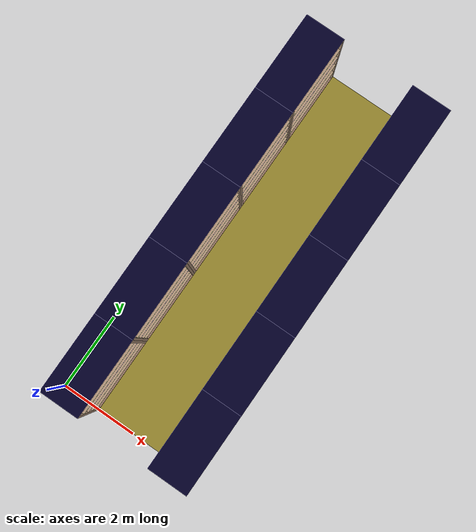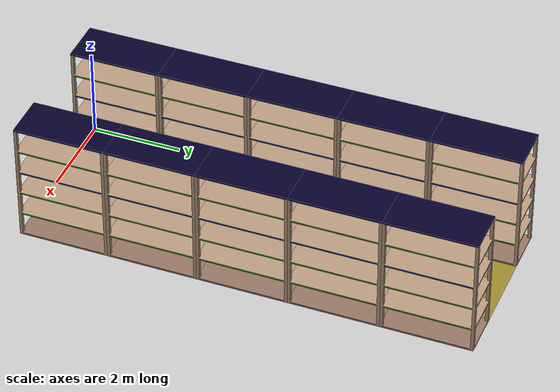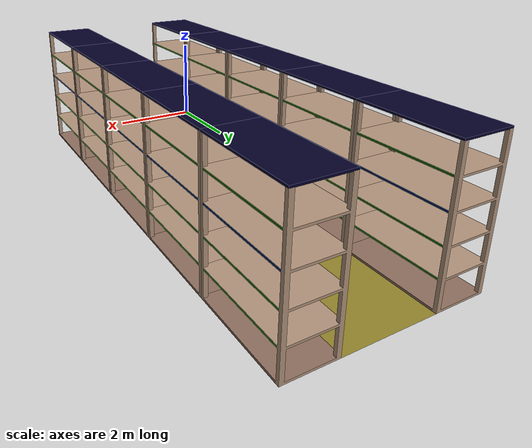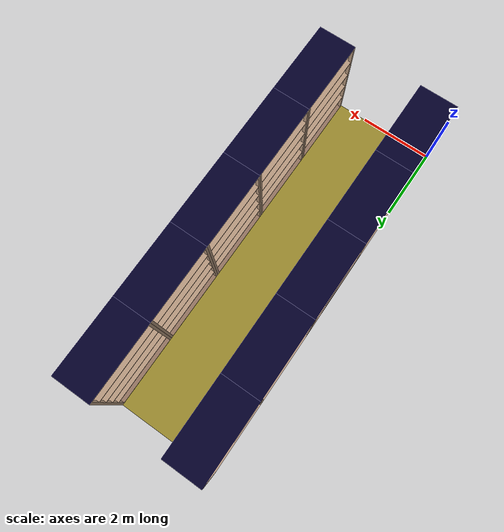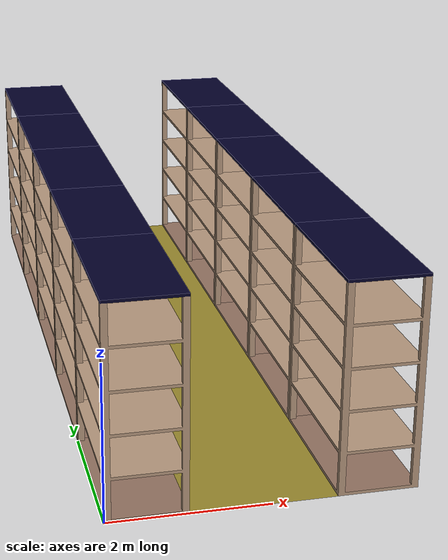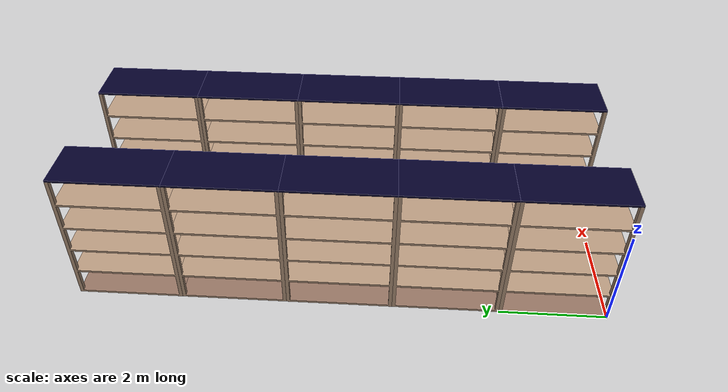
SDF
<?xml version="1.0"?>
<sdf version="1.6">
  <world name="biblioteca">
    <physics type="ode" name="split_unthrottled3">
      <real_time_update_rate>1000.0</real_time_update_rate>
      <max_step_size>0.001</max_step_size>
      <ode>
        <solver>
          <type>quick</type>
          <sor>1.4</sor>
          <thread_position_correction>1</thread_position_correction>
          <island_threads>4</island_threads>
        </solver>
      </ode>
    </physics>
    <scene>
      <ambient>1 1 1 1</ambient>
      <background>0.3 0.7 0.9 1</background>
      <shadows>0</shadows>
      <grid>1</grid>
    </scene>
    <model name="floor">
      <pose>0 0 0.0  0 0 0</pose>
      <static>true</static>
      <link name="main">
        <visual name="visual">
          <geometry>
            <mesh>
              <uri>model://use_case_resources/store/meshes/floor.dae</uri>
            </mesh>
          </geometry>
        </visual>
        <collision name="collision">
          <geometry>
            <mesh>
              <uri>model://use_case_resources/store/meshes/floor-collision.dae</uri>
            </mesh>
          </geometry>
        </collision>
      </link>
      <link name="shelf1">
        <pose>0.0 0.0 0.0 0 0 0</pose>
        <visual name="visual">
          <geometry>
            <mesh>
              <uri>model://use_case_resources/store/meshes/shelf.dae</uri>
            </mesh>
          </geometry>
        </visual>
        <collision name="collision">
          <geometry>
            <mesh>
              <uri>model://use_case_resources/store/meshes/shelf-collision.dae</uri>
            </mesh>
          </geometry>
        </collision>
      </link>
      <link name="shelf2">
        <pose>0.0 2.0 0.0 0 0 0</pose>
        <visual name="visual">
          <geometry>
            <mesh>
              <uri>model://use_case_resources/store/meshes/shelf.dae</uri>
            </mesh>
          </geometry>
        </visual>
        <collision name="collision">
          <geometry>
            <mesh>
              <uri>model://use_case_resources/store/meshes/shelf-collision.dae</uri>
            </mesh>
          </geometry>
        </collision>
      </link>
      <link name="shelf3">
        <pose>0.0 4.0 0.0 0 0 0</pose>
        <visual name="visual">
          <geometry>
            <mesh>
              <uri>model://use_case_resources/store/meshes/shelf.dae</uri>
            </mesh>
          </geometry>
        </visual>
        <collision name="collision">
          <geometry>
            <mesh>
              <uri>model://use_case_resources/store/meshes/shelf-collision.dae</uri>
            </mesh>
          </geometry>
        </collision>
      </link>
      <link name="shelf4">
        <pose>0.0 6.0 0.0 0 0 0</pose>
        <visual name="visual">
          <geometry>
            <mesh>
              <uri>model://use_case_resources/store/meshes/shelf.dae</uri>
            </mesh>
          </geometry>
        </visual>
        <collision name="collision">
          <geometry>
            <mesh>
              <uri>model://use_case_resources/store/meshes/shelf-collision.dae</uri>
            </mesh>
          </geometry>
        </collision>
      </link>
      <link name="shelf5">
        <pose>0.0 8.0 0.0 0 0 0</pose>
        <visual name="visual">
          <geometry>
            <mesh>
              <uri>model://use_case_resources/store/meshes/shelf.dae</uri>
            </mesh>
          </geometry>
        </visual>
        <collision name="collision">
          <geometry>
            <mesh>
              <uri>model://use_case_resources/store/meshes/shelf-collision.dae</uri>
            </mesh>
          </geometry>
        </collision>
      </link>
      <link name="right-shelf1">
        <pose>2.8 0.0 0.0 0 0 0</pose>
        <visual name="visual">
          <geometry>
            <mesh>
              <uri>model://use_case_resources/store/meshes/shelf.dae</uri>
            </mesh>
          </geometry>
        </visual>
        <collision name="collision">
          <geometry>
            <mesh>
              <uri>model://use_case_resources/store/meshes/shelf-collision.dae</uri>
            </mesh>
          </geometry>
        </collision>
      </link>
      <link name="right-shelf2">
        <pose>2.8 2.0 0.0 0 0 0</pose>
        <visual name="visual">
          <geometry>
            <mesh>
              <uri>model://use_case_resources/store/meshes/shelf.dae</uri>
            </mesh>
          </geometry>
        </visual>
        <collision name="collision">
          <geometry>
            <mesh>
              <uri>model://use_case_resources/store/meshes/shelf-collision.dae</uri>
            </mesh>
          </geometry>
        </collision>
      </link>
      <link name="right-shelf3">
        <pose>2.8 4.0 0.0 0 0 0</pose>
        <visual name="visual">
          <geometry>
            <mesh>
              <uri>model://use_case_resources/store/meshes/shelf.dae</uri>
            </mesh>
          </geometry>
        </visual>
        <collision name="collision">
          <geometry>
            <mesh>
              <uri>model://use_case_resources/store/meshes/shelf-collision.dae</uri>
            </mesh>
          </geometry>
        </collision>
      </link>
      <link name="right-shelf4">
        <pose>2.8 6.0 0.0 0 0 0</pose>
        <visual name="visual">
          <geometry>
            <mesh>
              <uri>model://use_case_resources/store/meshes/shelf.dae</uri>
            </mesh>
          </geometry>
        </visual>
        <collision name="collision">
          <geometry>
            <mesh>
              <uri>model://use_case_resources/store/meshes/shelf-collision.dae</uri>
            </mesh>
          </geometry>
        </collision>
      </link>
      <link name="right-shelf5">
        <pose>2.8 8.0 0.0 0 0 0</pose>
        <visual name="visual">
          <geometry>
            <mesh>
              <uri>model://use_case_resources/store/meshes/shelf.dae</uri>
            </mesh>
          </geometry>
        </visual>
        <collision name="collision">
          <geometry>
            <mesh>
              <uri>model://use_case_resources/store/meshes/shelf-collision.dae</uri>
            </mesh>
          </geometry>
        </collision>
      </link>
      <joint name="world_joint" type="fixed">
          <parent>world</parent>
          <child>main</child>
      </joint>
    </model>
    <light type="point" name="light1">
      <pose>1.9 3.3 3.0 0 0 0</pose>
      <diffuse>127 127 127 127</diffuse>
      <specular>0.3 0.3 0.3 1</specular>
      <attenuation>
        <linear>0.01</linear>
        <constant>0.5</constant>
        <quadratic>0</quadratic>
      </attenuation>
      <cast_shadows>true</cast_shadows>
      <intensity>1.0</intensity>
    </light>
    <light type="point" name="light2">
      <pose>1.9 6.6 3.0 0 0 0</pose>
      <diffuse>127 127 127 127</diffuse>
      <specular>0.3 0.3 0.3 1</specular>
      <attenuation>
        <linear>0.01</linear>
        <constant>0.5</constant>
        <quadratic>0</quadratic>
      </attenuation>
      <cast_shadows>true</cast_shadows>
      <intensity>1.0</intensity>
    </light>
  </world>
</sdf>
